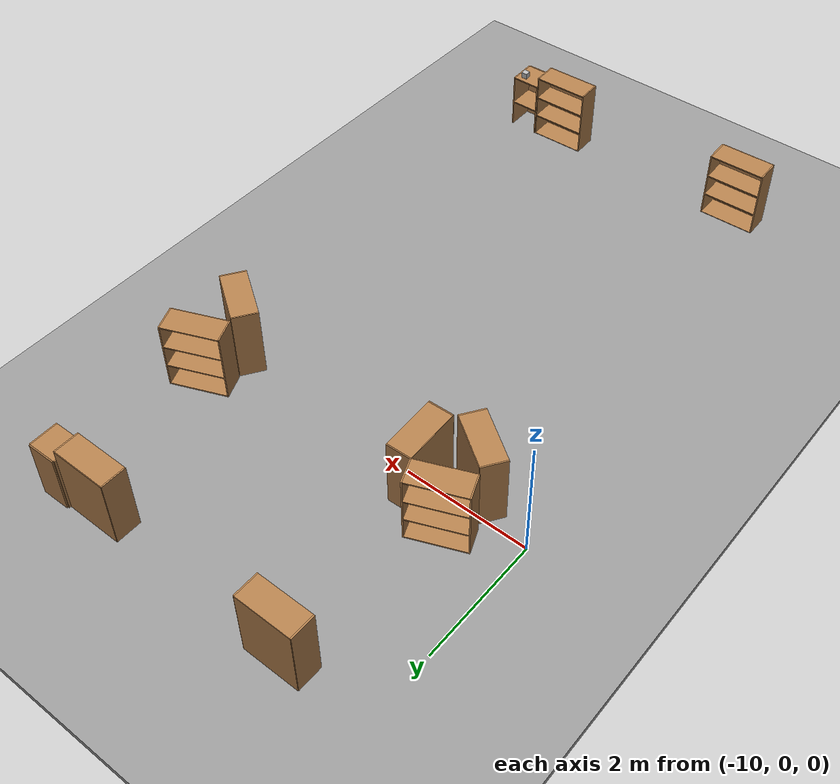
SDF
<sdf version="1.7">
 <world name="default">
  <model name="ground_plane">
   <static>1</static>
   <link name="link">
    <collision name="collision">
     <geometry><plane><normal>0 0 1</normal><size>100 100</size></plane></geometry>
     <surface><friction><ode><mu>100</mu><mu2>50</mu2></ode></friction></surface>
    </collision>
    <visual name="visual">
     <cast_shadows>0</cast_shadows>
     <geometry><plane><normal>0 0 1</normal><size>100 100</size></plane></geometry>
     <material>
      <script><uri>file://media/materials/scripts/gazebo.material</uri><name>Gazebo/Grey</name></script>
     </material>
    </visual>
   </link>
  </model>
  <model name="ground_plane_1">
   <static>1</static>
   <link name="link">
    <collision name="collision">
     <geometry><plane><normal>0 0 1</normal><size>100 100</size></plane></geometry>
     <surface>
      <contact><collide_bitmask>65535</collide_bitmask></contact>
      <friction><ode><mu>100</mu><mu2>50</mu2></ode></friction>
     </surface>
    </collision>
    <visual name="visual">
     <cast_shadows>0</cast_shadows>
     <geometry><plane><normal>0 0 1</normal><size>100 100</size></plane></geometry>
     <material>
      <script><uri>file://media/materials/scripts/gazebo.material</uri><name>Gazebo/Grey</name></script>
     </material>
    </visual>
   </link>
   <pose>-14.0073 -2.16514 0 0 -0 0</pose>
  </model>
  <model name="bookshelf_0">
   <static>1</static>
   <link name="link">
    <inertial><mass>1</mass></inertial>
    <collision name="back">
     <pose>0 0.005 0.6 0 -0 0</pose>
     <geometry><box><size>0.9 0.01 1.2</size></box></geometry>
    </collision>
    <visual name="visual1">
     <pose>0 0.005 0.6 0 -0 0</pose>
     <geometry><box><size>0.9 0.01 1.2</size></box></geometry>
     <material>
      <script><uri>file://media/materials/scripts/gazebo.material</uri><name>Gazebo/Wood</name></script>
     </material>
    </visual>
    <collision name="left_side">
     <pose>0.45 -0.195 0.6 0 -0 0</pose>
     <geometry><box><size>0.02 0.4 1.2</size></box></geometry>
    </collision>
    <visual name="visual2">
     <pose>0.45 -0.195 0.6 0 -0 0</pose>
     <geometry><box><size>0.02 0.4 1.2</size></box></geometry>
     <material>
      <script><uri>file://media/materials/scripts/gazebo.material</uri><name>Gazebo/Wood</name></script>
     </material>
    </visual>
    <collision name="right_side">
     <pose>-0.45 -0.195 0.6 0 -0 0</pose>
     <geometry><box><size>0.02 0.4 1.2</size></box></geometry>
    </collision>
    <visual name="visual3">
     <pose>-0.45 -0.195 0.6 0 -0 0</pose>
     <geometry><box><size>0.02 0.4 1.2</size></box></geometry>
     <material>
      <script><uri>file://media/materials/scripts/gazebo.material</uri><name>Gazebo/Wood</name></script>
     </material>
    </visual>
    <collision name="bottom">
     <pose>0 -0.195 0.03 0 -0 0</pose>
     <geometry><box><size>0.88 0.4 0.06</size></box></geometry>
    </collision>
    <visual name="visual4">
     <pose>0 -0.195 0.03 0 -0 0</pose>
     <geometry><box><size>0.88 0.4 0.06</size></box></geometry>
     <material>
      <script><uri>file://media/materials/scripts/gazebo.material</uri><name>Gazebo/Wood</name></script>
     </material>
    </visual>
    <collision name="top">
     <pose>0 -0.195 1.19 0 -0 0</pose>
     <geometry><box><size>0.88 0.4 0.02</size></box></geometry>
    </collision>
    <visual name="visual5">
     <pose>0 -0.195 1.19 0 -0 0</pose>
     <geometry><box><size>0.88 0.4 0.02</size></box></geometry>
     <material>
      <script><uri>file://media/materials/scripts/gazebo.material</uri><name>Gazebo/Wood</name></script>
     </material>
    </visual>
    <collision name="low_shelf">
     <pose>0 -0.195 0.43 0 -0 0</pose>
     <geometry><box><size>0.88 0.4 0.02</size></box></geometry>
    </collision>
    <visual name="visual6">
     <pose>0 -0.195 0.43 0 -0 0</pose>
     <geometry><box><size>0.88 0.4 0.02</size></box></geometry>
     <material>
      <script><uri>file://media/materials/scripts/gazebo.material</uri><name>Gazebo/Wood</name></script>
     </material>
    </visual>
    <collision name="high_shelf">
     <pose>0 -0.195 0.8 0 -0 0</pose>
     <geometry><box><size>0.88 0.4 0.02</size></box></geometry>
    </collision>
    <visual name="visual7">
     <pose>0 -0.195 0.8 0 -0 0</pose>
     <geometry><box><size>0.88 0.4 0.02</size></box></geometry>
     <material>
      <script><uri>file://media/materials/scripts/gazebo.material</uri><name>Gazebo/Wood</name></script>
     </material>
    </visual>
   </link>
   <pose>-8.64596 3.34342 0 0 -0 0</pose>
  </model>
  <model name="bookshelf_0_clone">
   <static>1</static>
   <link name="link">
    <inertial><mass>1</mass></inertial>
    <collision name="back">
     <pose>0 0.005 0.6 0 -0 0</pose>
     <geometry><box><size>0.9 0.01 1.2</size></box></geometry>
    </collision>
    <visual name="visual1">
     <pose>0 0.005 0.6 0 -0 0</pose>
     <geometry><box><size>0.9 0.01 1.2</size></box></geometry>
     <material>
      <script><uri>file://media/materials/scripts/gazebo.material</uri><name>Gazebo/Wood</name></script>
     </material>
    </visual>
    <collision name="left_side">
     <pose>0.45 -0.195 0.6 0 -0 0</pose>
     <geometry><box><size>0.02 0.4 1.2</size></box></geometry>
    </collision>
    <visual name="visual2">
     <pose>0.45 -0.195 0.6 0 -0 0</pose>
     <geometry><box><size>0.02 0.4 1.2</size></box></geometry>
     <material>
      <script><uri>file://media/materials/scripts/gazebo.material</uri><name>Gazebo/Wood</name></script>
     </material>
    </visual>
    <collision name="right_side">
     <pose>-0.45 -0.195 0.6 0 -0 0</pose>
     <geometry><box><size>0.02 0.4 1.2</size></box></geometry>
    </collision>
    <visual name="visual3">
     <pose>-0.45 -0.195 0.6 0 -0 0</pose>
     <geometry><box><size>0.02 0.4 1.2</size></box></geometry>
     <material>
      <script><uri>file://media/materials/scripts/gazebo.material</uri><name>Gazebo/Wood</name></script>
     </material>
    </visual>
    <collision name="bottom">
     <pose>0 -0.195 0.03 0 -0 0</pose>
     <geometry><box><size>0.88 0.4 0.06</size></box></geometry>
    </collision>
    <visual name="visual4">
     <pose>0 -0.195 0.03 0 -0 0</pose>
     <geometry><box><size>0.88 0.4 0.06</size></box></geometry>
     <material>
      <script><uri>file://media/materials/scripts/gazebo.material</uri><name>Gazebo/Wood</name></script>
     </material>
    </visual>
    <collision name="top">
     <pose>0 -0.195 1.19 0 -0 0</pose>
     <geometry><box><size>0.88 0.4 0.02</size></box></geometry>
    </collision>
    <visual name="visual5">
     <pose>0 -0.195 1.19 0 -0 0</pose>
     <geometry><box><size>0.88 0.4 0.02</size></box></geometry>
     <material>
      <script><uri>file://media/materials/scripts/gazebo.material</uri><name>Gazebo/Wood</name></script>
     </material>
    </visual>
    <collision name="low_shelf">
     <pose>0 -0.195 0.43 0 -0 0</pose>
     <geometry><box><size>0.88 0.4 0.02</size></box></geometry>
    </collision>
    <visual name="visual6">
     <pose>0 -0.195 0.43 0 -0 0</pose>
     <geometry><box><size>0.88 0.4 0.02</size></box></geometry>
     <material>
      <script><uri>file://media/materials/scripts/gazebo.material</uri><name>Gazebo/Wood</name></script>
     </material>
    </visual>
    <collision name="high_shelf">
     <pose>0 -0.195 0.8 0 -0 0</pose>
     <geometry><box><size>0.88 0.4 0.02</size></box></geometry>
    </collision>
    <visual name="visual7">
     <pose>0 -0.195 0.8 0 -0 0</pose>
     <geometry><box><size>0.88 0.4 0.02</size></box></geometry>
     <material>
      <script><uri>file://media/materials/scripts/gazebo.material</uri><name>Gazebo/Wood</name></script>
     </material>
    </visual>
   </link>
   <pose>-5.35741 3.26655 0 0 -0 0</pose>
  </model>
  <model name="cabinet">
   <static>1</static>
   <link name="cabinet_bottom_plate">
    <inertial>
     <pose>0 0 -1 0 -0 0</pose>
     <inertia><ixx>2.05</ixx><ixy>0</ixy><ixz>0</ixz><iyy>2.05</iyy><iyz>0</iyz><izz>2.05</izz></inertia>
     <mass>25</mass>
    </inertial>
    <collision name="cabinet_bottom_plate_geom">
     <pose>0 0 0.01 0 -0 0</pose>
     <geometry><box><size>0.45 0.45 0.02</size></box></geometry>
    </collision>
    <visual name="cabinet_bottom_plate_geom_visual">
     <pose>0 0 0.01 0 -0 0</pose>
     <geometry><box><size>0.45 0.45 0.02</size></box></geometry>
     <material>
      <script><uri>file://media/materials/scripts/gazebo.material</uri><name>Gazebo/Wood</name></script>
     </material>
    </visual>
    <collision name="cabinet_bottom_plate_geom_cabinet_back_plate">
     <pose>0.235 0 0.51 0 -0 0</pose>
     <geometry><box><size>0.02 0.45 1.02</size></box></geometry>
    </collision>
    <visual name="cabinet_bottom_plate_geom_cabinet_back_plate_visual">
     <pose>0.235 0 0.51 0 -0 0</pose>
     <geometry><box><size>0.02 0.45 1.02</size></box></geometry>
     <material>
      <script><uri>file://media/materials/scripts/gazebo.material</uri><name>Gazebo/Wood</name></script>
     </material>
    </visual>
    <collision name="cabinet_bottom_plate_geom_cabinet_left_plate">
     <pose>0 0.235 0.51 0 -0 0</pose>
     <geometry><box><size>0.45 0.02 1.02</size></box></geometry>
    </collision>
    <visual name="cabinet_bottom_plate_geom_cabinet_left_plate_visual">
     <pose>0 0.235 0.51 0 -0 0</pose>
     <geometry><box><size>0.45 0.02 1.02</size></box></geometry>
     <material>
      <script><uri>file://media/materials/scripts/gazebo.material</uri><name>Gazebo/Wood</name></script>
     </material>
    </visual>
    <collision name="cabinet_bottom_plate_geom_cabinet_middle_plate">
     <pose>0 0 0.51 0 -0 0</pose>
     <geometry><box><size>0.45 0.45 0.02</size></box></geometry>
    </collision>
    <visual name="cabinet_bottom_plate_geom_cabinet_middle_plate_visual">
     <pose>0 0 0.51 0 -0 0</pose>
     <geometry><box><size>0.45 0.45 0.02</size></box></geometry>
     <material>
      <script><uri>file://media/materials/scripts/gazebo.material</uri><name>Gazebo/Wood</name></script>
     </material>
    </visual>
    <collision name="cabinet_bottom_plate_geom_cabinet_right_plate">
     <pose>0 -0.235 0.51 0 -0 0</pose>
     <geometry><box><size>0.45 0.02 1.02</size></box></geometry>
    </collision>
    <visual name="cabinet_bottom_plate_geom_cabinet_right_plate_visual">
     <pose>0 -0.235 0.51 0 -0 0</pose>
     <geometry><box><size>0.45 0.02 1.02</size></box></geometry>
     <material>
      <script><uri>file://media/materials/scripts/gazebo.material</uri><name>Gazebo/Wood</name></script>
     </material>
    </visual>
    <collision name="cabinet_bottom_plate_geom_cabinet_top_plate">
     <pose>0 0 1.01 0 -0 0</pose>
     <geometry><box><size>0.45 0.45 0.02</size></box></geometry>
    </collision>
    <visual name="cabinet_bottom_plate_geom_cabinet_top_plate_visual">
     <pose>0 0 1.01 0 -0 0</pose>
     <geometry><box><size>0.45 0.45 0.02</size></box></geometry>
     <material>
      <script><uri>file://media/materials/scripts/gazebo.material</uri><name>Gazebo/Wood</name></script>
     </material>
    </visual>
   </link>
   <pose>-4.65296 3.08486 0 0 -0 1.58529</pose>
  </model>
  <model name="bookshelf_0_clone_0">
   <static>1</static>
   <link name="link">
    <inertial><mass>1</mass></inertial>
    <collision name="back">
     <pose>0 0.005 0.6 0 -0 0</pose>
     <geometry><box><size>0.9 0.01 1.2</size></box></geometry>
    </collision>
    <visual name="visual1">
     <pose>0 0.005 0.6 0 -0 0</pose>
     <geometry><box><size>0.9 0.01 1.2</size></box></geometry>
     <material>
      <script><uri>file://media/materials/scripts/gazebo.material</uri><name>Gazebo/Wood</name></script>
     </material>
    </visual>
    <collision name="left_side">
     <pose>0.45 -0.195 0.6 0 -0 0</pose>
     <geometry><box><size>0.02 0.4 1.2</size></box></geometry>
    </collision>
    <visual name="visual2">
     <pose>0.45 -0.195 0.6 0 -0 0</pose>
     <geometry><box><size>0.02 0.4 1.2</size></box></geometry>
     <material>
      <script><uri>file://media/materials/scripts/gazebo.material</uri><name>Gazebo/Wood</name></script>
     </material>
    </visual>
    <collision name="right_side">
     <pose>-0.45 -0.195 0.6 0 -0 0</pose>
     <geometry><box><size>0.02 0.4 1.2</size></box></geometry>
    </collision>
    <visual name="visual3">
     <pose>-0.45 -0.195 0.6 0 -0 0</pose>
     <geometry><box><size>0.02 0.4 1.2</size></box></geometry>
     <material>
      <script><uri>file://media/materials/scripts/gazebo.material</uri><name>Gazebo/Wood</name></script>
     </material>
    </visual>
    <collision name="bottom">
     <pose>0 -0.195 0.03 0 -0 0</pose>
     <geometry><box><size>0.88 0.4 0.06</size></box></geometry>
    </collision>
    <visual name="visual4">
     <pose>0 -0.195 0.03 0 -0 0</pose>
     <geometry><box><size>0.88 0.4 0.06</size></box></geometry>
     <material>
      <script><uri>file://media/materials/scripts/gazebo.material</uri><name>Gazebo/Wood</name></script>
     </material>
    </visual>
    <collision name="top">
     <pose>0 -0.195 1.19 0 -0 0</pose>
     <geometry><box><size>0.88 0.4 0.02</size></box></geometry>
    </collision>
    <visual name="visual5">
     <pose>0 -0.195 1.19 0 -0 0</pose>
     <geometry><box><size>0.88 0.4 0.02</size></box></geometry>
     <material>
      <script><uri>file://media/materials/scripts/gazebo.material</uri><name>Gazebo/Wood</name></script>
     </material>
    </visual>
    <collision name="low_shelf">
     <pose>0 -0.195 0.43 0 -0 0</pose>
     <geometry><box><size>0.88 0.4 0.02</size></box></geometry>
    </collision>
    <visual name="visual6">
     <pose>0 -0.195 0.43 0 -0 0</pose>
     <geometry><box><size>0.88 0.4 0.02</size></box></geometry>
     <material>
      <script><uri>file://media/materials/scripts/gazebo.material</uri><name>Gazebo/Wood</name></script>
     </material>
    </visual>
    <collision name="high_shelf">
     <pose>0 -0.195 0.8 0 -0 0</pose>
     <geometry><box><size>0.88 0.4 0.02</size></box></geometry>
    </collision>
    <visual name="visual7">
     <pose>0 -0.195 0.8 0 -0 0</pose>
     <geometry><box><size>0.88 0.4 0.02</size></box></geometry>
     <material>
      <script><uri>file://media/materials/scripts/gazebo.material</uri><name>Gazebo/Wood</name></script>
     </material>
    </visual>
   </link>
   <pose>-8.75541 -7.62626 0 0 0 -3.10983</pose>
  </model>
  <model name="bookshelf_0_clone_0_clone">
   <static>1</static>
   <link name="link">
    <inertial><mass>1</mass></inertial>
    <collision name="back">
     <pose>0 0.005 0.6 0 -0 0</pose>
     <geometry><box><size>0.9 0.01 1.2</size></box></geometry>
    </collision>
    <visual name="visual1">
     <pose>0 0.005 0.6 0 -0 0</pose>
     <geometry><box><size>0.9 0.01 1.2</size></box></geometry>
     <material>
      <script><uri>file://media/materials/scripts/gazebo.material</uri><name>Gazebo/Wood</name></script>
     </material>
    </visual>
    <collision name="left_side">
     <pose>0.45 -0.195 0.6 0 -0 0</pose>
     <geometry><box><size>0.02 0.4 1.2</size></box></geometry>
    </collision>
    <visual name="visual2">
     <pose>0.45 -0.195 0.6 0 -0 0</pose>
     <geometry><box><size>0.02 0.4 1.2</size></box></geometry>
     <material>
      <script><uri>file://media/materials/scripts/gazebo.material</uri><name>Gazebo/Wood</name></script>
     </material>
    </visual>
    <collision name="right_side">
     <pose>-0.45 -0.195 0.6 0 -0 0</pose>
     <geometry><box><size>0.02 0.4 1.2</size></box></geometry>
    </collision>
    <visual name="visual3">
     <pose>-0.45 -0.195 0.6 0 -0 0</pose>
     <geometry><box><size>0.02 0.4 1.2</size></box></geometry>
     <material>
      <script><uri>file://media/materials/scripts/gazebo.material</uri><name>Gazebo/Wood</name></script>
     </material>
    </visual>
    <collision name="bottom">
     <pose>0 -0.195 0.03 0 -0 0</pose>
     <geometry><box><size>0.88 0.4 0.06</size></box></geometry>
    </collision>
    <visual name="visual4">
     <pose>0 -0.195 0.03 0 -0 0</pose>
     <geometry><box><size>0.88 0.4 0.06</size></box></geometry>
     <material>
      <script><uri>file://media/materials/scripts/gazebo.material</uri><name>Gazebo/Wood</name></script>
     </material>
    </visual>
    <collision name="top">
     <pose>0 -0.195 1.19 0 -0 0</pose>
     <geometry><box><size>0.88 0.4 0.02</size></box></geometry>
    </collision>
    <visual name="visual5">
     <pose>0 -0.195 1.19 0 -0 0</pose>
     <geometry><box><size>0.88 0.4 0.02</size></box></geometry>
     <material>
      <script><uri>file://media/materials/scripts/gazebo.material</uri><name>Gazebo/Wood</name></script>
     </material>
    </visual>
    <collision name="low_shelf">
     <pose>0 -0.195 0.43 0 -0 0</pose>
     <geometry><box><size>0.88 0.4 0.02</size></box></geometry>
    </collision>
    <visual name="visual6">
     <pose>0 -0.195 0.43 0 -0 0</pose>
     <geometry><box><size>0.88 0.4 0.02</size></box></geometry>
     <material>
      <script><uri>file://media/materials/scripts/gazebo.material</uri><name>Gazebo/Wood</name></script>
     </material>
    </visual>
    <collision name="high_shelf">
     <pose>0 -0.195 0.8 0 -0 0</pose>
     <geometry><box><size>0.88 0.4 0.02</size></box></geometry>
    </collision>
    <visual name="visual7">
     <pose>0 -0.195 0.8 0 -0 0</pose>
     <geometry><box><size>0.88 0.4 0.02</size></box></geometry>
     <material>
      <script><uri>file://media/materials/scripts/gazebo.material</uri><name>Gazebo/Wood</name></script>
     </material>
    </visual>
   </link>
   <pose>-5.34307 -7.65405 0 0 0 -3.10983</pose>
  </model>
  <model name="cabinet_clone">
   <static>1</static>
   <link name="cabinet_bottom_plate">
    <inertial>
     <pose>0 0 -1 0 -0 0</pose>
     <inertia><ixx>2.05</ixx><ixy>0</ixy><ixz>0</ixz><iyy>2.05</iyy><iyz>0</iyz><izz>2.05</izz></inertia>
     <mass>25</mass>
    </inertial>
    <collision name="cabinet_bottom_plate_geom">
     <pose>0 0 0.01 0 -0 0</pose>
     <geometry><box><size>0.45 0.45 0.02</size></box></geometry>
    </collision>
    <visual name="cabinet_bottom_plate_geom_visual">
     <pose>0 0 0.01 0 -0 0</pose>
     <geometry><box><size>0.45 0.45 0.02</size></box></geometry>
     <material>
      <script><uri>file://media/materials/scripts/gazebo.material</uri><name>Gazebo/Wood</name></script>
     </material>
    </visual>
    <collision name="cabinet_bottom_plate_geom_cabinet_back_plate">
     <pose>0.235 0 0.51 0 -0 0</pose>
     <geometry><box><size>0.02 0.45 1.02</size></box></geometry>
    </collision>
    <visual name="cabinet_bottom_plate_geom_cabinet_back_plate_visual">
     <pose>0.235 0 0.51 0 -0 0</pose>
     <geometry><box><size>0.02 0.45 1.02</size></box></geometry>
     <material>
      <script><uri>file://media/materials/scripts/gazebo.material</uri><name>Gazebo/Wood</name></script>
     </material>
    </visual>
    <collision name="cabinet_bottom_plate_geom_cabinet_left_plate">
     <pose>0 0.235 0.51 0 -0 0</pose>
     <geometry><box><size>0.45 0.02 1.02</size></box></geometry>
    </collision>
    <visual name="cabinet_bottom_plate_geom_cabinet_left_plate_visual">
     <pose>0 0.235 0.51 0 -0 0</pose>
     <geometry><box><size>0.45 0.02 1.02</size></box></geometry>
     <material>
      <script><uri>file://media/materials/scripts/gazebo.material</uri><name>Gazebo/Wood</name></script>
     </material>
    </visual>
    <collision name="cabinet_bottom_plate_geom_cabinet_middle_plate">
     <pose>0 0 0.51 0 -0 0</pose>
     <geometry><box><size>0.45 0.45 0.02</size></box></geometry>
    </collision>
    <visual name="cabinet_bottom_plate_geom_cabinet_middle_plate_visual">
     <pose>0 0 0.51 0 -0 0</pose>
     <geometry><box><size>0.45 0.45 0.02</size></box></geometry>
     <material>
      <script><uri>file://media/materials/scripts/gazebo.material</uri><name>Gazebo/Wood</name></script>
     </material>
    </visual>
    <collision name="cabinet_bottom_plate_geom_cabinet_right_plate">
     <pose>0 -0.235 0.51 0 -0 0</pose>
     <geometry><box><size>0.45 0.02 1.02</size></box></geometry>
    </collision>
    <visual name="cabinet_bottom_plate_geom_cabinet_right_plate_visual">
     <pose>0 -0.235 0.51 0 -0 0</pose>
     <geometry><box><size>0.45 0.02 1.02</size></box></geometry>
     <material>
      <script><uri>file://media/materials/scripts/gazebo.material</uri><name>Gazebo/Wood</name></script>
     </material>
    </visual>
    <collision name="cabinet_bottom_plate_geom_cabinet_top_plate">
     <pose>0 0 1.01 0 -0 0</pose>
     <geometry><box><size>0.45 0.45 0.02</size></box></geometry>
    </collision>
    <visual name="cabinet_bottom_plate_geom_cabinet_top_plate_visual">
     <pose>0 0 1.01 0 -0 0</pose>
     <geometry><box><size>0.45 0.45 0.02</size></box></geometry>
     <material>
      <script><uri>file://media/materials/scripts/gazebo.material</uri><name>Gazebo/Wood</name></script>
     </material>
    </visual>
   </link>
   <pose>-4.65153 -7.45705 0 0 0 -1.55167</pose>
  </model>
  <model name="wood_cube_5cm">
   <link name="link">
    <pose>0 0 0.025 0 -0 0</pose>
    <inertial>
     <mass>0.0565</mass>
     <inertia>
      <ixx>2.35417e-05</ixx>
      <ixy>0</ixy>
      <ixz>0</ixz>
      <iyy>2.35417e-05</iyy>
      <iyz>0</iyz>
      <izz>2.35417e-05</izz>
     </inertia>
    </inertial>
    <collision name="collision">
     <geometry><box><size>0.05 0.05 0.05</size></box></geometry>
     <surface>
      <contact>
       <poissons_ratio>0.347</poissons_ratio>
       <elastic_modulus>8.8e+09</elastic_modulus>
       <ode><kp>100000</kp><kd>1</kd><max_vel>1</max_vel><min_depth>0.001</min_depth></ode>
      </contact>
      <friction>
       <torsional>
        <coefficient>1</coefficient>
        <use_patch_radius>0</use_patch_radius>
        <surface_radius>0.05</surface_radius>
       </torsional>
      </friction>
     </surface>
    </collision>
    <visual name="visual">
     <geometry><box><size>0.05 0.05 0.05</size></box></geometry>
     <material>
      <script><uri>file://media/materials/scripts/gazebo.material</uri><name>Gazebo/Wood</name></script>
     </material>
    </visual>
   </link>
   <pose>-4.57316 3.08026 0.518999 0 -0 0</pose>
  </model>
  <model name="wooden_board">
   <link name="base">
    <pose>0 0 0.00523 0 -0 0</pose>
    <inertial>
     <mass>0.2765</mass>
     <inertia>
      <ixx>0.0025148</ixx>
      <ixy>0</ixy>
      <ixz>0</ixz>
      <iyy>0.00024037</iyy>
      <iyz>0</iyz>
      <izz>0.00275013</izz>
     </inertia>
    </inertial>
    <collision name="collision">
     <geometry><box><size>0.1016 0.3302 0.01046</size></box></geometry>
     <surface>
      <contact>
       <poissons_ratio>0.347</poissons_ratio>
       <elastic_modulus>8.8e+09</elastic_modulus>
       <ode><kp>100000</kp><kd>100</kd><max_vel>100</max_vel><min_depth>0.001</min_depth></ode>
      </contact>
      <friction>
       <torsional>
        <coefficient>1</coefficient>
        <use_patch_radius>0</use_patch_radius>
        <surface_radius>0.01</surface_radius>
       </torsional>
      </friction>
     </surface>
    </collision>
    <visual name="visual">
     <geometry><box><size>0.1016 0.3302 0.01046</size></box></geometry>
     <material>
      <script><uri>file://media/materials/scripts/gazebo.material</uri><name>Gazebo/Wood</name></script>
     </material>
    </visual>
    <visual name="tee_nut_1">
     <pose>0 -0.116 0 0 -0 0</pose>
     <geometry><cylinder><radius>0.00635</radius><length>0.0105646</length></cylinder></geometry>
     <material>
      <script><uri>file://media/materials/scripts/gazebo.material</uri><name>Gazebo/Grey</name></script>
     </material>
    </visual>
    <visual name="tee_nut_2">
     <pose>0 -0.038 0 0 -0 0</pose>
     <geometry><cylinder><radius>0.00635</radius><length>0.0105646</length></cylinder></geometry>
     <material>
      <script><uri>file://media/materials/scripts/gazebo.material</uri><name>Gazebo/Grey</name></script>
     </material>
    </visual>
    <visual name="tee_nut_3">
     <pose>0 0.038 0 0 -0 0</pose>
     <geometry><cylinder><radius>0.00635</radius><length>0.0105646</length></cylinder></geometry>
     <material>
      <script><uri>file://media/materials/scripts/gazebo.material</uri><name>Gazebo/Grey</name></script>
     </material>
    </visual>
    <visual name="tee_nut_4">
     <pose>0 0.116 0 0 -0 0</pose>
     <geometry><cylinder><radius>0.00635</radius><length>0.0105646</length></cylinder></geometry>
     <material>
      <script><uri>file://media/materials/scripts/gazebo.material</uri><name>Gazebo/Grey</name></script>
     </material>
    </visual>
   </link>
   <pose>-4.64182 3.0603 0.034809 0.026946 -0.037907 -0.314162</pose>
  </model>
  <model name="wooden_board_clone">
   <link name="base">
    <pose>0 0 0.00523 0 -0 0</pose>
    <inertial>
     <mass>0.2765</mass>
     <inertia>
      <ixx>0.0025148</ixx>
      <ixy>0</ixy>
      <ixz>0</ixz>
      <iyy>0.00024037</iyy>
      <iyz>0</iyz>
      <izz>0.00275013</izz>
     </inertia>
    </inertial>
    <collision name="collision">
     <geometry><box><size>0.1016 0.3302 0.01046</size></box></geometry>
     <surface>
      <contact>
       <poissons_ratio>0.347</poissons_ratio>
       <elastic_modulus>8.8e+09</elastic_modulus>
       <ode><kp>100000</kp><kd>100</kd><max_vel>100</max_vel><min_depth>0.001</min_depth></ode>
      </contact>
      <friction>
       <torsional>
        <coefficient>1</coefficient>
        <use_patch_radius>0</use_patch_radius>
        <surface_radius>0.01</surface_radius>
       </torsional>
      </friction>
     </surface>
    </collision>
    <visual name="visual">
     <geometry><box><size>0.1016 0.3302 0.01046</size></box></geometry>
     <material>
      <script><uri>file://media/materials/scripts/gazebo.material</uri><name>Gazebo/Wood</name></script>
     </material>
    </visual>
    <visual name="tee_nut_1">
     <pose>0 -0.116 0 0 -0 0</pose>
     <geometry><cylinder><radius>0.00635</radius><length>0.0105646</length></cylinder></geometry>
     <material>
      <script><uri>file://media/materials/scripts/gazebo.material</uri><name>Gazebo/Grey</name></script>
     </material>
    </visual>
    <visual name="tee_nut_2">
     <pose>0 -0.038 0 0 -0 0</pose>
     <geometry><cylinder><radius>0.00635</radius><length>0.0105646</length></cylinder></geometry>
     <material>
      <script><uri>file://media/materials/scripts/gazebo.material</uri><name>Gazebo/Grey</name></script>
     </material>
    </visual>
    <visual name="tee_nut_3">
     <pose>0 0.038 0 0 -0 0</pose>
     <geometry><cylinder><radius>0.00635</radius><length>0.0105646</length></cylinder></geometry>
     <material>
      <script><uri>file://media/materials/scripts/gazebo.material</uri><name>Gazebo/Grey</name></script>
     </material>
    </visual>
    <visual name="tee_nut_4">
     <pose>0 0.116 0 0 -0 0</pose>
     <geometry><cylinder><radius>0.00635</radius><length>0.0105646</length></cylinder></geometry>
     <material>
      <script><uri>file://media/materials/scripts/gazebo.material</uri><name>Gazebo/Grey</name></script>
     </material>
    </visual>
   </link>
   <pose>-4.49352 3.0956 0.025428 0.010037 0.094581 0.08807</pose>
  </model>
  <model name="wooden_board_clone_0">
   <link name="base">
    <pose>0 0 0.00523 0 -0 0</pose>
    <inertial>
     <mass>0.2765</mass>
     <inertia>
      <ixx>0.0025148</ixx>
      <ixy>0</ixy>
      <ixz>0</ixz>
      <iyy>0.00024037</iyy>
      <iyz>0</iyz>
      <izz>0.00275013</izz>
     </inertia>
    </inertial>
    <collision name="collision">
     <geometry><box><size>0.1016 0.3302 0.01046</size></box></geometry>
     <surface>
      <contact>
       <poissons_ratio>0.347</poissons_ratio>
       <elastic_modulus>8.8e+09</elastic_modulus>
       <ode><kp>100000</kp><kd>100</kd><max_vel>100</max_vel><min_depth>0.001</min_depth></ode>
      </contact>
      <friction>
       <torsional>
        <coefficient>1</coefficient>
        <use_patch_radius>0</use_patch_radius>
        <surface_radius>0.01</surface_radius>
       </torsional>
      </friction>
     </surface>
    </collision>
    <visual name="visual">
     <geometry><box><size>0.1016 0.3302 0.01046</size></box></geometry>
     <material>
      <script><uri>file://media/materials/scripts/gazebo.material</uri><name>Gazebo/Wood</name></script>
     </material>
    </visual>
    <visual name="tee_nut_1">
     <pose>0 -0.116 0 0 -0 0</pose>
     <geometry><cylinder><radius>0.00635</radius><length>0.0105646</length></cylinder></geometry>
     <material>
      <script><uri>file://media/materials/scripts/gazebo.material</uri><name>Gazebo/Grey</name></script>
     </material>
    </visual>
    <visual name="tee_nut_2">
     <pose>0 -0.038 0 0 -0 0</pose>
     <geometry><cylinder><radius>0.00635</radius><length>0.0105646</length></cylinder></geometry>
     <material>
      <script><uri>file://media/materials/scripts/gazebo.material</uri><name>Gazebo/Grey</name></script>
     </material>
    </visual>
    <visual name="tee_nut_3">
     <pose>0 0.038 0 0 -0 0</pose>
     <geometry><cylinder><radius>0.00635</radius><length>0.0105646</length></cylinder></geometry>
     <material>
      <script><uri>file://media/materials/scripts/gazebo.material</uri><name>Gazebo/Grey</name></script>
     </material>
    </visual>
    <visual name="tee_nut_4">
     <pose>0 0.116 0 0 -0 0</pose>
     <geometry><cylinder><radius>0.00635</radius><length>0.0105646</length></cylinder></geometry>
     <material>
      <script><uri>file://media/materials/scripts/gazebo.material</uri><name>Gazebo/Grey</name></script>
     </material>
    </visual>
   </link>
   <pose>-4.78003 3.08077 0.01899 1.9e-05 4.9e-05 0.000425</pose>
  </model>
  <model name="wooden_board_clone_1">
   <link name="base">
    <pose>0 0 0.00523 0 -0 0</pose>
    <inertial>
     <mass>0.2765</mass>
     <inertia>
      <ixx>0.0025148</ixx>
      <ixy>0</ixy>
      <ixz>0</ixz>
      <iyy>0.00024037</iyy>
      <iyz>0</iyz>
      <izz>0.00275013</izz>
     </inertia>
    </inertial>
    <collision name="collision">
     <geometry><box><size>0.1016 0.3302 0.01046</size></box></geometry>
     <surface>
      <contact>
       <poissons_ratio>0.347</poissons_ratio>
       <elastic_modulus>8.8e+09</elastic_modulus>
       <ode><kp>100000</kp><kd>100</kd><max_vel>100</max_vel><min_depth>0.001</min_depth></ode>
      </contact>
      <friction>
       <torsional>
        <coefficient>1</coefficient>
        <use_patch_radius>0</use_patch_radius>
        <surface_radius>0.01</surface_radius>
       </torsional>
      </friction>
     </surface>
    </collision>
    <visual name="visual">
     <geometry><box><size>0.1016 0.3302 0.01046</size></box></geometry>
     <material>
      <script><uri>file://media/materials/scripts/gazebo.material</uri><name>Gazebo/Wood</name></script>
     </material>
    </visual>
    <visual name="tee_nut_1">
     <pose>0 -0.116 0 0 -0 0</pose>
     <geometry><cylinder><radius>0.00635</radius><length>0.0105646</length></cylinder></geometry>
     <material>
      <script><uri>file://media/materials/scripts/gazebo.material</uri><name>Gazebo/Grey</name></script>
     </material>
    </visual>
    <visual name="tee_nut_2">
     <pose>0 -0.038 0 0 -0 0</pose>
     <geometry><cylinder><radius>0.00635</radius><length>0.0105646</length></cylinder></geometry>
     <material>
      <script><uri>file://media/materials/scripts/gazebo.material</uri><name>Gazebo/Grey</name></script>
     </material>
    </visual>
    <visual name="tee_nut_3">
     <pose>0 0.038 0 0 -0 0</pose>
     <geometry><cylinder><radius>0.00635</radius><length>0.0105646</length></cylinder></geometry>
     <material>
      <script><uri>file://media/materials/scripts/gazebo.material</uri><name>Gazebo/Grey</name></script>
     </material>
    </visual>
    <visual name="tee_nut_4">
     <pose>0 0.116 0 0 -0 0</pose>
     <geometry><cylinder><radius>0.00635</radius><length>0.0105646</length></cylinder></geometry>
     <material>
      <script><uri>file://media/materials/scripts/gazebo.material</uri><name>Gazebo/Grey</name></script>
     </material>
    </visual>
   </link>
   <pose>-4.57538 3.11182 0.018982 -2.8e-05 0.000227 -0.018261</pose>
  </model>
  <model name="depth_camera">
   <link name="link">
    <pose>0 0 0.05 0 -0 0</pose>
    <inertial>
     <mass>0.1</mass>
     <inertia>
      <ixx>0.000166667</ixx>
      <iyy>0.000166667</iyy>
      <izz>0.000166667</izz>
      <ixy>0</ixy>
      <ixz>0</ixz>
      <iyz>0</iyz>
     </inertia>
    </inertial>
    <collision name="collision"><geometry><box><size>0.1 0.1 0.1</size></box></geometry></collision>
    <visual name="visual"><geometry><box><size>0.1 0.1 0.1</size></box></geometry></visual>
    <sensor name="camera" type="depth">
     <camera>
      <horizontal_fov>1.047</horizontal_fov>
      <image><width>320</width><height>240</height></image>
      <clip><near>0.1</near><far>100</far></clip>
     </camera>
     <always_on>1</always_on>
     <update_rate>30</update_rate>
     <visualize>1</visualize>
    </sensor>
   </link>
   <pose>-4.69158 -7.16544 1.1825 0 -0 0</pose>
  </model>
  <model name="bookshelf_clone_clone_clone_1_clone_0_clone_1">
   <static>1</static>
   <link name="link">
    <inertial><mass>1</mass></inertial>
    <collision name="back">
     <pose>0 0.005 0.6 0 -0 0</pose>
     <geometry><box><size>0.9 0.01 1.2</size></box></geometry>
    </collision>
    <visual name="visual1">
     <pose>0 0.005 0.6 0 -0 0</pose>
     <geometry><box><size>0.9 0.01 1.2</size></box></geometry>
     <material>
      <script><uri>file://media/materials/scripts/gazebo.material</uri><name>Gazebo/Wood</name></script>
     </material>
    </visual>
    <collision name="left_side">
     <pose>0.45 -0.195 0.6 0 -0 0</pose>
     <geometry><box><size>0.02 0.4 1.2</size></box></geometry>
    </collision>
    <visual name="visual2">
     <pose>0.45 -0.195 0.6 0 -0 0</pose>
     <geometry><box><size>0.02 0.4 1.2</size></box></geometry>
     <material>
      <script><uri>file://media/materials/scripts/gazebo.material</uri><name>Gazebo/Wood</name></script>
     </material>
    </visual>
    <collision name="right_side">
     <pose>-0.45 -0.195 0.6 0 -0 0</pose>
     <geometry><box><size>0.02 0.4 1.2</size></box></geometry>
    </collision>
    <visual name="visual3">
     <pose>-0.45 -0.195 0.6 0 -0 0</pose>
     <geometry><box><size>0.02 0.4 1.2</size></box></geometry>
     <material>
      <script><uri>file://media/materials/scripts/gazebo.material</uri><name>Gazebo/Wood</name></script>
     </material>
    </visual>
    <collision name="bottom">
     <pose>0 -0.195 0.03 0 -0 0</pose>
     <geometry><box><size>0.88 0.4 0.06</size></box></geometry>
    </collision>
    <visual name="visual4">
     <pose>0 -0.195 0.03 0 -0 0</pose>
     <geometry><box><size>0.88 0.4 0.06</size></box></geometry>
     <material>
      <script><uri>file://media/materials/scripts/gazebo.material</uri><name>Gazebo/Wood</name></script>
     </material>
    </visual>
    <collision name="top">
     <pose>0 -0.195 1.19 0 -0 0</pose>
     <geometry><box><size>0.88 0.4 0.02</size></box></geometry>
    </collision>
    <visual name="visual5">
     <pose>0 -0.195 1.19 0 -0 0</pose>
     <geometry><box><size>0.88 0.4 0.02</size></box></geometry>
     <material>
      <script><uri>file://media/materials/scripts/gazebo.material</uri><name>Gazebo/Wood</name></script>
     </material>
    </visual>
    <collision name="low_shelf">
     <pose>0 -0.195 0.43 0 -0 0</pose>
     <geometry><box><size>0.88 0.4 0.02</size></box></geometry>
    </collision>
    <visual name="visual6">
     <pose>0 -0.195 0.43 0 -0 0</pose>
     <geometry><box><size>0.88 0.4 0.02</size></box></geometry>
     <material>
      <script><uri>file://media/materials/scripts/gazebo.material</uri><name>Gazebo/Wood</name></script>
     </material>
    </visual>
    <collision name="high_shelf">
     <pose>0 -0.195 0.8 0 -0 0</pose>
     <geometry><box><size>0.88 0.4 0.02</size></box></geometry>
    </collision>
    <visual name="visual7">
     <pose>0 -0.195 0.8 0 -0 0</pose>
     <geometry><box><size>0.88 0.4 0.02</size></box></geometry>
     <material>
      <script><uri>file://media/materials/scripts/gazebo.material</uri><name>Gazebo/Wood</name></script>
     </material>
    </visual>
   </link>
   <pose>-8.91093 -0.143227 0.029212 0 -0 -0.598378</pose>
  </model>
  <model name="bookshelf_clone_clone_clone_1_clone_0_clone_2">
   <static>1</static>
   <link name="link">
    <inertial><mass>1</mass></inertial>
    <collision name="back">
     <pose>0 0.005 0.6 0 -0 0</pose>
     <geometry><box><size>0.9 0.01 1.2</size></box></geometry>
    </collision>
    <visual name="visual1">
     <pose>0 0.005 0.6 0 -0 0</pose>
     <geometry><box><size>0.9 0.01 1.2</size></box></geometry>
     <material>
      <script><uri>file://media/materials/scripts/gazebo.material</uri><name>Gazebo/Wood</name></script>
     </material>
    </visual>
    <collision name="left_side">
     <pose>0.45 -0.195 0.6 0 -0 0</pose>
     <geometry><box><size>0.02 0.4 1.2</size></box></geometry>
    </collision>
    <visual name="visual2">
     <pose>0.45 -0.195 0.6 0 -0 0</pose>
     <geometry><box><size>0.02 0.4 1.2</size></box></geometry>
     <material>
      <script><uri>file://media/materials/scripts/gazebo.material</uri><name>Gazebo/Wood</name></script>
     </material>
    </visual>
    <collision name="right_side">
     <pose>-0.45 -0.195 0.6 0 -0 0</pose>
     <geometry><box><size>0.02 0.4 1.2</size></box></geometry>
    </collision>
    <visual name="visual3">
     <pose>-0.45 -0.195 0.6 0 -0 0</pose>
     <geometry><box><size>0.02 0.4 1.2</size></box></geometry>
     <material>
      <script><uri>file://media/materials/scripts/gazebo.material</uri><name>Gazebo/Wood</name></script>
     </material>
    </visual>
    <collision name="bottom">
     <pose>0 -0.195 0.03 0 -0 0</pose>
     <geometry><box><size>0.88 0.4 0.06</size></box></geometry>
    </collision>
    <visual name="visual4">
     <pose>0 -0.195 0.03 0 -0 0</pose>
     <geometry><box><size>0.88 0.4 0.06</size></box></geometry>
     <material>
      <script><uri>file://media/materials/scripts/gazebo.material</uri><name>Gazebo/Wood</name></script>
     </material>
    </visual>
    <collision name="top">
     <pose>0 -0.195 1.19 0 -0 0</pose>
     <geometry><box><size>0.88 0.4 0.02</size></box></geometry>
    </collision>
    <visual name="visual5">
     <pose>0 -0.195 1.19 0 -0 0</pose>
     <geometry><box><size>0.88 0.4 0.02</size></box></geometry>
     <material>
      <script><uri>file://media/materials/scripts/gazebo.material</uri><name>Gazebo/Wood</name></script>
     </material>
    </visual>
    <collision name="low_shelf">
     <pose>0 -0.195 0.43 0 -0 0</pose>
     <geometry><box><size>0.88 0.4 0.02</size></box></geometry>
    </collision>
    <visual name="visual6">
     <pose>0 -0.195 0.43 0 -0 0</pose>
     <geometry><box><size>0.88 0.4 0.02</size></box></geometry>
     <material>
      <script><uri>file://media/materials/scripts/gazebo.material</uri><name>Gazebo/Wood</name></script>
     </material>
    </visual>
    <collision name="high_shelf">
     <pose>0 -0.195 0.8 0 -0 0</pose>
     <geometry><box><size>0.88 0.4 0.02</size></box></geometry>
    </collision>
    <visual name="visual7">
     <pose>0 -0.195 0.8 0 -0 0</pose>
     <geometry><box><size>0.88 0.4 0.02</size></box></geometry>
     <material>
      <script><uri>file://media/materials/scripts/gazebo.material</uri><name>Gazebo/Wood</name></script>
     </material>
    </visual>
   </link>
   <pose>-8.49326 0.08209 0.012624 0 -0 1.60042</pose>
  </model>
  <model name="bookshelf_clone_clone_clone_1_clone_0_clone_3">
   <static>1</static>
   <link name="link">
    <inertial><mass>1</mass></inertial>
    <collision name="back">
     <pose>0 0.005 0.6 0 -0 0</pose>
     <geometry><box><size>0.9 0.01 1.2</size></box></geometry>
    </collision>
    <visual name="visual1">
     <pose>0 0.005 0.6 0 -0 0</pose>
     <geometry><box><size>0.9 0.01 1.2</size></box></geometry>
     <material>
      <script><uri>file://media/materials/scripts/gazebo.material</uri><name>Gazebo/Wood</name></script>
     </material>
    </visual>
    <collision name="left_side">
     <pose>0.45 -0.195 0.6 0 -0 0</pose>
     <geometry><box><size>0.02 0.4 1.2</size></box></geometry>
    </collision>
    <visual name="visual2">
     <pose>0.45 -0.195 0.6 0 -0 0</pose>
     <geometry><box><size>0.02 0.4 1.2</size></box></geometry>
     <material>
      <script><uri>file://media/materials/scripts/gazebo.material</uri><name>Gazebo/Wood</name></script>
     </material>
    </visual>
    <collision name="right_side">
     <pose>-0.45 -0.195 0.6 0 -0 0</pose>
     <geometry><box><size>0.02 0.4 1.2</size></box></geometry>
    </collision>
    <visual name="visual3">
     <pose>-0.45 -0.195 0.6 0 -0 0</pose>
     <geometry><box><size>0.02 0.4 1.2</size></box></geometry>
     <material>
      <script><uri>file://media/materials/scripts/gazebo.material</uri><name>Gazebo/Wood</name></script>
     </material>
    </visual>
    <collision name="bottom">
     <pose>0 -0.195 0.03 0 -0 0</pose>
     <geometry><box><size>0.88 0.4 0.06</size></box></geometry>
    </collision>
    <visual name="visual4">
     <pose>0 -0.195 0.03 0 -0 0</pose>
     <geometry><box><size>0.88 0.4 0.06</size></box></geometry>
     <material>
      <script><uri>file://media/materials/scripts/gazebo.material</uri><name>Gazebo/Wood</name></script>
     </material>
    </visual>
    <collision name="top">
     <pose>0 -0.195 1.19 0 -0 0</pose>
     <geometry><box><size>0.88 0.4 0.02</size></box></geometry>
    </collision>
    <visual name="visual5">
     <pose>0 -0.195 1.19 0 -0 0</pose>
     <geometry><box><size>0.88 0.4 0.02</size></box></geometry>
     <material>
      <script><uri>file://media/materials/scripts/gazebo.material</uri><name>Gazebo/Wood</name></script>
     </material>
    </visual>
    <collision name="low_shelf">
     <pose>0 -0.195 0.43 0 -0 0</pose>
     <geometry><box><size>0.88 0.4 0.02</size></box></geometry>
    </collision>
    <visual name="visual6">
     <pose>0 -0.195 0.43 0 -0 0</pose>
     <geometry><box><size>0.88 0.4 0.02</size></box></geometry>
     <material>
      <script><uri>file://media/materials/scripts/gazebo.material</uri><name>Gazebo/Wood</name></script>
     </material>
    </visual>
    <collision name="high_shelf">
     <pose>0 -0.195 0.8 0 -0 0</pose>
     <geometry><box><size>0.88 0.4 0.02</size></box></geometry>
    </collision>
    <visual name="visual7">
     <pose>0 -0.195 0.8 0 -0 0</pose>
     <geometry><box><size>0.88 0.4 0.02</size></box></geometry>
     <material>
      <script><uri>file://media/materials/scripts/gazebo.material</uri><name>Gazebo/Wood</name></script>
     </material>
    </visual>
   </link>
   <pose>-8.92253 0.361108 0.012624 0 -0 -2.75538</pose>
  </model>
  <model name="bookshelf_clone_clone_clone_1_clone_0_clone_1_clone">
   <static>1</static>
   <link name="link">
    <inertial><mass>1</mass></inertial>
    <collision name="back">
     <pose>0 0.005 0.6 0 -0 0</pose>
     <geometry><box><size>0.9 0.01 1.2</size></box></geometry>
    </collision>
    <visual name="visual1">
     <pose>0 0.005 0.6 0 -0 0</pose>
     <geometry><box><size>0.9 0.01 1.2</size></box></geometry>
     <material>
      <script><uri>file://media/materials/scripts/gazebo.material</uri><name>Gazebo/Wood</name></script>
     </material>
    </visual>
    <collision name="left_side">
     <pose>0.45 -0.195 0.6 0 -0 0</pose>
     <geometry><box><size>0.02 0.4 1.2</size></box></geometry>
    </collision>
    <visual name="visual2">
     <pose>0.45 -0.195 0.6 0 -0 0</pose>
     <geometry><box><size>0.02 0.4 1.2</size></box></geometry>
     <material>
      <script><uri>file://media/materials/scripts/gazebo.material</uri><name>Gazebo/Wood</name></script>
     </material>
    </visual>
    <collision name="right_side">
     <pose>-0.45 -0.195 0.6 0 -0 0</pose>
     <geometry><box><size>0.02 0.4 1.2</size></box></geometry>
    </collision>
    <visual name="visual3">
     <pose>-0.45 -0.195 0.6 0 -0 0</pose>
     <geometry><box><size>0.02 0.4 1.2</size></box></geometry>
     <material>
      <script><uri>file://media/materials/scripts/gazebo.material</uri><name>Gazebo/Wood</name></script>
     </material>
    </visual>
    <collision name="bottom">
     <pose>0 -0.195 0.03 0 -0 0</pose>
     <geometry><box><size>0.88 0.4 0.06</size></box></geometry>
    </collision>
    <visual name="visual4">
     <pose>0 -0.195 0.03 0 -0 0</pose>
     <geometry><box><size>0.88 0.4 0.06</size></box></geometry>
     <material>
      <script><uri>file://media/materials/scripts/gazebo.material</uri><name>Gazebo/Wood</name></script>
     </material>
    </visual>
    <collision name="top">
     <pose>0 -0.195 1.19 0 -0 0</pose>
     <geometry><box><size>0.88 0.4 0.02</size></box></geometry>
    </collision>
    <visual name="visual5">
     <pose>0 -0.195 1.19 0 -0 0</pose>
     <geometry><box><size>0.88 0.4 0.02</size></box></geometry>
     <material>
      <script><uri>file://media/materials/scripts/gazebo.material</uri><name>Gazebo/Wood</name></script>
     </material>
    </visual>
    <collision name="low_shelf">
     <pose>0 -0.195 0.43 0 -0 0</pose>
     <geometry><box><size>0.88 0.4 0.02</size></box></geometry>
    </collision>
    <visual name="visual6">
     <pose>0 -0.195 0.43 0 -0 0</pose>
     <geometry><box><size>0.88 0.4 0.02</size></box></geometry>
     <material>
      <script><uri>file://media/materials/scripts/gazebo.material</uri><name>Gazebo/Wood</name></script>
     </material>
    </visual>
    <collision name="high_shelf">
     <pose>0 -0.195 0.8 0 -0 0</pose>
     <geometry><box><size>0.88 0.4 0.02</size></box></geometry>
    </collision>
    <visual name="visual7">
     <pose>0 -0.195 0.8 0 -0 0</pose>
     <geometry><box><size>0.88 0.4 0.02</size></box></geometry>
     <material>
      <script><uri>file://media/materials/scripts/gazebo.material</uri><name>Gazebo/Wood</name></script>
     </material>
    </visual>
   </link>
   <pose>-4.60038 -0.059924 0.029212 0 0 -0.598378</pose>
  </model>
  <model name="bookshelf_clone_clone_clone_1_clone_0_clone_3_clone">
   <static>1</static>
   <link name="link">
    <inertial><mass>1</mass></inertial>
    <collision name="back">
     <pose>0 0.005 0.6 0 -0 0</pose>
     <geometry><box><size>0.9 0.01 1.2</size></box></geometry>
    </collision>
    <visual name="visual1">
     <pose>0 0.005 0.6 0 -0 0</pose>
     <geometry><box><size>0.9 0.01 1.2</size></box></geometry>
     <material>
      <script><uri>file://media/materials/scripts/gazebo.material</uri><name>Gazebo/Wood</name></script>
     </material>
    </visual>
    <collision name="left_side">
     <pose>0.45 -0.195 0.6 0 -0 0</pose>
     <geometry><box><size>0.02 0.4 1.2</size></box></geometry>
    </collision>
    <visual name="visual2">
     <pose>0.45 -0.195 0.6 0 -0 0</pose>
     <geometry><box><size>0.02 0.4 1.2</size></box></geometry>
     <material>
      <script><uri>file://media/materials/scripts/gazebo.material</uri><name>Gazebo/Wood</name></script>
     </material>
    </visual>
    <collision name="right_side">
     <pose>-0.45 -0.195 0.6 0 -0 0</pose>
     <geometry><box><size>0.02 0.4 1.2</size></box></geometry>
    </collision>
    <visual name="visual3">
     <pose>-0.45 -0.195 0.6 0 -0 0</pose>
     <geometry><box><size>0.02 0.4 1.2</size></box></geometry>
     <material>
      <script><uri>file://media/materials/scripts/gazebo.material</uri><name>Gazebo/Wood</name></script>
     </material>
    </visual>
    <collision name="bottom">
     <pose>0 -0.195 0.03 0 -0 0</pose>
     <geometry><box><size>0.88 0.4 0.06</size></box></geometry>
    </collision>
    <visual name="visual4">
     <pose>0 -0.195 0.03 0 -0 0</pose>
     <geometry><box><size>0.88 0.4 0.06</size></box></geometry>
     <material>
      <script><uri>file://media/materials/scripts/gazebo.material</uri><name>Gazebo/Wood</name></script>
     </material>
    </visual>
    <collision name="top">
     <pose>0 -0.195 1.19 0 -0 0</pose>
     <geometry><box><size>0.88 0.4 0.02</size></box></geometry>
    </collision>
    <visual name="visual5">
     <pose>0 -0.195 1.19 0 -0 0</pose>
     <geometry><box><size>0.88 0.4 0.02</size></box></geometry>
     <material>
      <script><uri>file://media/materials/scripts/gazebo.material</uri><name>Gazebo/Wood</name></script>
     </material>
    </visual>
    <collision name="low_shelf">
     <pose>0 -0.195 0.43 0 -0 0</pose>
     <geometry><box><size>0.88 0.4 0.02</size></box></geometry>
    </collision>
    <visual name="visual6">
     <pose>0 -0.195 0.43 0 -0 0</pose>
     <geometry><box><size>0.88 0.4 0.02</size></box></geometry>
     <material>
      <script><uri>file://media/materials/scripts/gazebo.material</uri><name>Gazebo/Wood</name></script>
     </material>
    </visual>
    <collision name="high_shelf">
     <pose>0 -0.195 0.8 0 -0 0</pose>
     <geometry><box><size>0.88 0.4 0.02</size></box></geometry>
    </collision>
    <visual name="visual7">
     <pose>0 -0.195 0.8 0 -0 0</pose>
     <geometry><box><size>0.88 0.4 0.02</size></box></geometry>
     <material>
      <script><uri>file://media/materials/scripts/gazebo.material</uri><name>Gazebo/Wood</name></script>
     </material>
    </visual>
   </link>
   <pose>-4.56929 0.40552 0.012624 0 0 -2.75538</pose>
  </model>
 </world>
</sdf>
